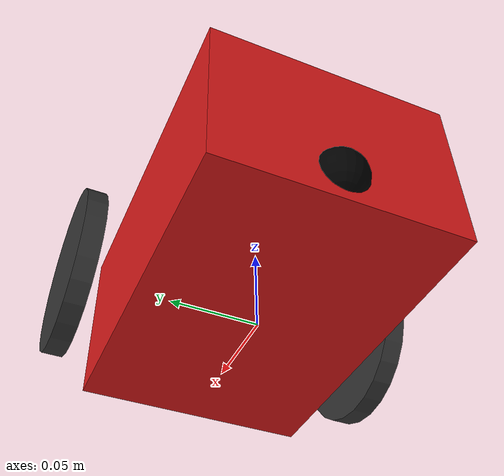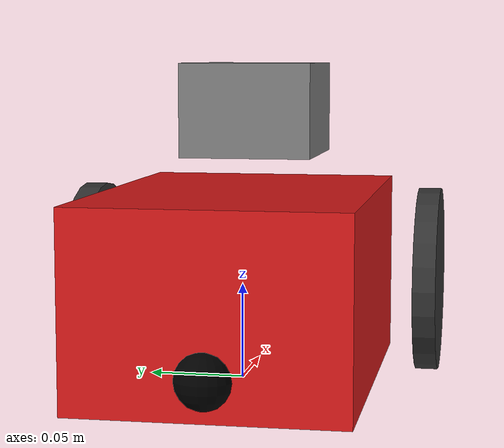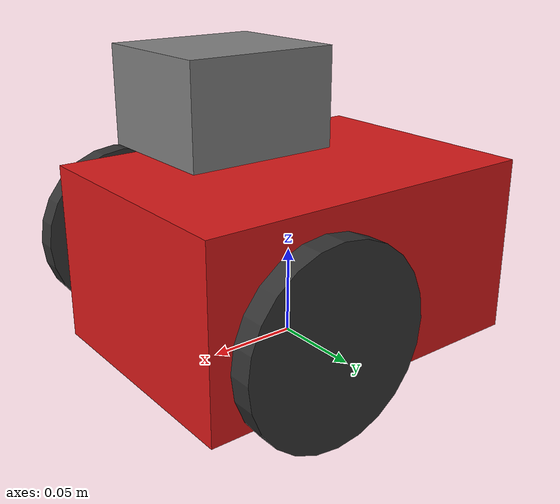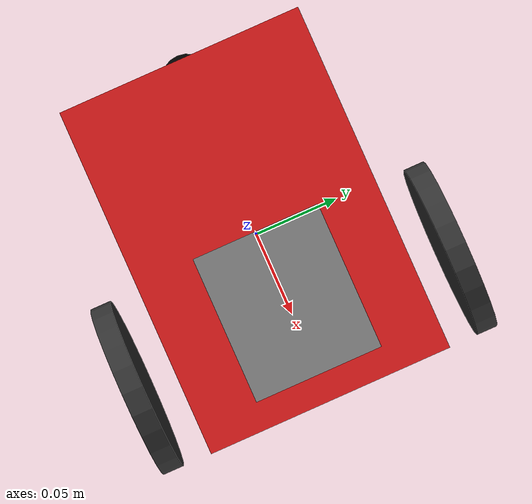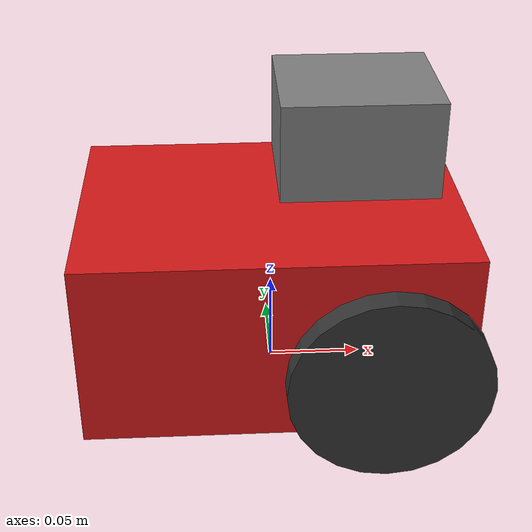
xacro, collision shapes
<?xml version="1.0"?>
<robot xmlns:xacro="http://www.ros.org/wiki/xacro" name="puzzlebot">

  <xacro:arg name="prefix" default="" />

  <xacro:include filename="$(find puzzlebot_description)/urdf/puzzlebot_base.urdf.xacro"/>
  <xacro:include filename="$(find puzzlebot_description)/urdf/puzzlebot_control.xacro"/>
  <xacro:include filename="$(find puzzlebot_description)/urdf/rpi_lidar_sensor.xacro"/>

  <xacro:puzzlebot_base prefix="$(arg prefix)"/>

  <xacro:rpi_lidar_sensor
    prefix="$(arg prefix)"
    frame_name="lidar_link"
    parent="base_link"
    topic_name="scan"
    update_rate="20"
    min_range="0.05"
    max_range="10.0"
    visualize="true"/>

  <xacro:puzzlebot_control prefix="$(arg prefix)"/>

</robot>

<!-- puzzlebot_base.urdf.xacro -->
<robot xmlns:xacro="http://www.ros.org/wiki/xacro">

  <!-- estructura física del Puzzlebot   -->
  <xacro:macro name="puzzlebot_base" params="prefix">

    <!-- BASE FOOTPRINT                                           -->
    <!-- Frame base del robot usado para navegación y TF         -->
    <!-- Normalmente se coloca en el suelo, justo debajo del robot -->
    <link name="${prefix}base_footprint"/>

    <!-- BASE LINK                                                -->
    <!-- Cuerpo principal del robot                              -->
    <!-- Contiene mesh visual, colisión e inercia                -->
    <link name="${prefix}base_link">

      <!-- ================= VISUAL ================= -->
      <!-- Cómo se ve el robot en RViz/Gazebo -->
      <visual>
        <origin xyz="0 0 0" rpy="0 0 0"/>
        <geometry>
          <mesh filename="package://puzzlebot_description/meshes/Puzzlebot_Jetson_Lidar_Edition_Base(1).stl"
                scale="1 1 1"/>
        </geometry>

        <material name="red">
          <color rgba="0.85 0.1 0.1 1.0"/>
        </material>
      </visual>

      <!-- ================= COLLISION ================= -->
      <!-- Geometría usada por Gazebo para física -->
      <collision>
        <origin xyz="0 0 0" rpy="0 0 0"/>
        <geometry>
          <box size="0.20 0.14 0.10"/>
        </geometry>
      </collision>

      <!-- ================= INERTIA ================= -->
      <!-- Propiedades físicas del robot -->
      <inertial>
        <origin xyz="0 0 0"/>
        <mass value="2.0"/>

        <inertia
          ixx="0.01" ixy="0.0" ixz="0.0"
          iyy="0.01" iyz="0.0"
          izz="0.02"/>
      </inertial>

    </link>

    <gazebo reference="${prefix}base_link">
      <material>Gazebo/Red</material>
    </gazebo>

    <!-- JOINT BASE FOOTPRINT -> BASE LINK                        -->
    <!-- Une el frame del suelo con el cuerpo del robot          -->
    <joint name="${prefix}base_link_joint" type="fixed">
      <parent link="${prefix}base_footprint"/>
      <child link="${prefix}base_link"/>
      <origin xyz="0 0 0.05" rpy="0 0 0"/>
    </joint>

    <!-- LLANTA IZQUIERDA                                         -->
    <link name="${prefix}wheel_l_link">

      <!-- Visual -->
      <visual>
        <origin xyz="0 0 0" rpy="1.5708 0 0"/>
        <geometry>
          <mesh filename="package://puzzlebot_description/meshes/Puzzlebot_Wheel.stl"
                scale="1 1 1"/>
        </geometry>

        <material name="gray">
          <color rgba="0.2 0.2 0.2 1.0"/>
        </material>
      </visual>

      <!-- Collision -->
      <collision>
        <origin xyz="0 0 0" rpy="1.5708 0 0"/>
        <geometry>
          <cylinder radius="0.05" length="0.012"/>
        </geometry>
      </collision>

      <!-- Inercia -->
      <inertial>
        <mass value="0.2"/>

        <inertia
          ixx="0.0002" ixy="0.0" ixz="0.0"
          iyy="0.0002" iyz="0.0"
          izz="0.0002"/>
      </inertial>

    </link>

    <!-- Joint rueda izquierda -->
    <joint name="${prefix}wheel_l_joint" type="continuous">
      <parent link="${prefix}base_link"/>
      <child link="${prefix}wheel_l_link"/>

      <!-- Posición lateral izquierda -->
      <origin xyz="0.052 0.095 -0.0025" rpy="0 0 0"/>

      <!-- Eje de rotación -->
      <axis xyz="0 1 0"/>
    </joint>

    <!-- LLANTA DERECHA                                           -->
    <link name="${prefix}wheel_r_link">

      <!-- Visual -->
      <visual>
        <origin xyz="0 0 0" rpy="1.5708 0 0"/>
        <geometry>
          <mesh filename="package://puzzlebot_description/meshes/Puzzlebot_Wheel.stl"
                scale="1 1 1"/>
        </geometry>

        <material name="gray">
          <color rgba="0.2 0.2 0.2 1.0"/>
        </material>
      </visual>

      <!-- Collision -->
      <collision>
        <origin xyz="0 0 0" rpy="1.5708 0 0"/>
        <geometry>
          <cylinder radius="0.05" length="0.012"/>
        </geometry>
      </collision>

      <!-- Inercia -->
      <inertial>
        <mass value="0.2"/>

        <inertia
          ixx="0.0002" ixy="0.0" ixz="0.0"
          iyy="0.0002" iyz="0.0"
          izz="0.0002"/>
      </inertial>

    </link>

    <!-- Joint rueda derecha -->
    <joint name="${prefix}wheel_r_joint" type="continuous">
      <parent link="${prefix}base_link"/>
      <child link="${prefix}wheel_r_link"/>

      <!-- Posición lateral derecha -->
      <origin xyz="0.052 -0.095 -0.0025" rpy="0 0 0"/>

      <!-- Eje de rotación -->
      <axis xyz="0 1 0"/>
    </joint>

    <!-- RUEDA CASTER                                              -->
    <!-- Rueda loca trasera                                       -->
    <link name="${prefix}caster_link">

      <!-- Visual -->
      <visual>
        <origin xyz="0 0 0" rpy="0 0 0"/>
        <geometry>
          <mesh filename="package://puzzlebot_description/meshes/Puzzlebot_Caster_Wheel.stl"
                scale="1 1 1"/>
        </geometry>

        <material name="black">
          <color rgba="0.0 0.0 0.0 1.0"/>
        </material>
      </visual>

      <!-- Collision -->
      <collision>
        <origin xyz="0 0 0" rpy="0 0 0"/>
        <geometry>
          <sphere radius="0.015"/>
        </geometry>
      </collision>

      <!-- Inercia -->
      <inertial>
        <mass value="0.05"/>

        <inertia
          ixx="0.00001" ixy="0.0" ixz="0.0"
          iyy="0.00001" iyz="0.0"
          izz="0.00001"/>
      </inertial>

    </link>

    <!-- Joint caster -->
    <joint name="${prefix}caster_joint" type="fixed">
      <parent link="${prefix}base_link"/>
      <child link="${prefix}caster_link"/>

      <!-- Posición trasera -->
      <origin xyz="-0.095 0 -0.03" rpy="0 0 0"/>
    </joint>

  </xacro:macro>

</robot>

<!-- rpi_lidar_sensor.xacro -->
<robot xmlns:xacro="http://www.ros.org/wiki/xacro">

  <xacro:property name="M_PI" value="3.1415926535897931" />

  <xacro:macro name="rpi_lidar_sensor" params="
    prefix:=''
    frame_name:='laser_frame'
    parent:='base_link'
    mesh_file:='file://$(find puzzlebot_description)/meshes/RPLidar.stl'

    lidar_base_mass:='0.1755'
    lidar_base_length:='0.08'
    lidar_base_width:='0.07'
    lidar_base_height:='0.05'

    lidar_base_inertia_pos_x:='0.0'
    lidar_base_inertia_pos_y:='0.0'
    lidar_base_inertia_pos_z:='0.021'
    lidar_base_inertia_pos_r:='0.0'
    lidar_base_inertia_pos_p:='0.0'
    lidar_base_inertia_pos_w:='0.0'

    lidar_base_collision_pos_x:='0.0'
    lidar_base_collision_pos_y:='0.0'
    lidar_base_collision_pos_z:='0.021'
    lidar_base_collision_pos_r:='0.0'
    lidar_base_collision_pos_p:='0.0'
    lidar_base_collision_pos_w:='0.0'

    lidar_base_mesh_pos_x:='0.0'
    lidar_base_mesh_pos_y:='0.0'
    lidar_base_mesh_pos_z:='0.025'
    lidar_base_mesh_pos_r:='0.0'
    lidar_base_mesh_pos_p:='0.0'
    lidar_base_mesh_pos_w:='0.0'

    lidar_base_pos_x:='0.0425'
    lidar_base_pos_y:='0.00'
    lidar_base_pos_z:='0.070'
    lidar_base_pos_r:='0.0'
    lidar_base_pos_p:='0.0'
    lidar_base_pos_w:='0.0'

    lidar_pos_x:='0.0'
    lidar_pos_y:='0.00'
    lidar_pos_z:='0.035'
    lidar_pos_r:='0.0'
    lidar_pos_p:='0.0'
    lidar_pos_w:='0.0'

    update_rate:='10'
    ray_count:='360'
    min_angle:='-3.14159'
    max_angle:='3.14159'
    min_range:='0.15'
    max_range:='12.0'
    range_resolution:='0.017'
    topic_name:='scan'
    always_on:='true'
    visualize:='false'
    ">

    <link name="${prefix}lidar_base_link">
        <visual>
            <origin xyz="${lidar_base_mesh_pos_x} ${lidar_base_mesh_pos_y} ${lidar_base_mesh_pos_z}" rpy="${lidar_base_mesh_pos_r} ${lidar_base_mesh_pos_p} ${lidar_base_mesh_pos_w}"/>
            <geometry>
                <mesh filename="${mesh_file}"/>
            </geometry>
            <material name="grey">
                <color rgba="0.5 0.5 0.5 1.0"/>
            </material>
        </visual>

        <collision>
            <origin xyz="${lidar_base_collision_pos_x} ${lidar_base_collision_pos_y} ${lidar_base_collision_pos_z}" rpy="${lidar_base_collision_pos_r} ${lidar_base_collision_pos_p} ${lidar_base_collision_pos_w}"/>
            <geometry>
                <box size="${lidar_base_length} ${lidar_base_width} ${lidar_base_height}"/>
            </geometry>
        </collision>

        <inertial>
            <origin xyz="${lidar_base_inertia_pos_x} ${lidar_base_inertia_pos_y} ${lidar_base_inertia_pos_z}" rpy="${lidar_base_inertia_pos_r} ${lidar_base_inertia_pos_p} ${lidar_base_inertia_pos_w}"/>
            <mass value="${lidar_base_mass}"/>
            <inertia ixx="0.0001" ixy="0.0" ixz="0.0"
                     iyy="0.0001" iyz="0.0"
                     izz="0.0001"/>
        </inertial>
    </link>

    <link name="${prefix}${frame_name}">

        <visual>
            <origin xyz="0 0 0" rpy="0 0 0"/>
            <geometry>
                <box size="0.005 0.005 0.005"/> <!-- Box shape for lidar -->
            </geometry>
            <material name="grey">
                <color rgba="0.5 0.5 0.5 1.0"/>
            </material>
        </visual>

        <collision>
            <origin xyz="0 0 0" rpy="0 0 0"/>
            <geometry>
                <box size="0.005 0.005 0.005"/>
            </geometry>
        </collision>

        <inertial>
            <origin xyz="0 0 0" rpy="0 0 0"/>
            <mass value="1e-5"/>
            <inertia ixx="0.000001" ixy="0.0" ixz="0.0"
                     iyy="0.000001" iyz="0.0"
                     izz="0.000001"/>
        </inertial>
    </link>

    <joint name="${prefix}lidar_base_joint" type="fixed">
        <parent link="${prefix}${parent}"/>
        <child link="${prefix}lidar_base_link"/>
        <origin xyz="${lidar_base_pos_x} ${lidar_base_pos_y} ${lidar_base_pos_z}" rpy="${lidar_base_pos_r} ${lidar_base_pos_p} ${lidar_base_pos_w}"/>
    </joint>

    <joint name="${prefix}lidar_joint" type="fixed">
        <parent link="${prefix}lidar_base_link"/>
        <child link="${prefix}${frame_name}"/>
        <origin xyz="${lidar_pos_x} ${lidar_pos_y} ${lidar_pos_z}" rpy="${lidar_pos_r} ${lidar_pos_p} ${lidar_pos_w}"/>
    </joint>

    <gazebo reference="${prefix}${frame_name}">
        <sensor name="${prefix}lidar_sensor" type="gpu_lidar">
            <topic>${prefix}${topic_name}</topic>
            <gz_frame_id>${prefix}${frame_name}</gz_frame_id>
            <pose> 0 0 0 0 0 0 </pose>
            <update_rate>${update_rate}</update_rate>
            <always_on>${always_on}</always_on>
            <visualize>${visualize}</visualize>
            <ray>
            <scan>
                <horizontal>
                <samples>${ray_count}</samples>
                <resolution>1</resolution>
                <min_angle>${min_angle}</min_angle>
                <max_angle>${max_angle}</max_angle>
                </horizontal>
                <vertical>
                <samples>1</samples>
                <resolution>0.01</resolution>
                <min_angle>0</min_angle>
                <max_angle>0</max_angle>
                </vertical>
            </scan>
            <range>
                <min>${min_range}</min>
                <max>${max_range}</max>
                <resolution>${range_resolution}</resolution>
            </range>
            </ray>
        </sensor>
    </gazebo>

    </xacro:macro>
</robot>
